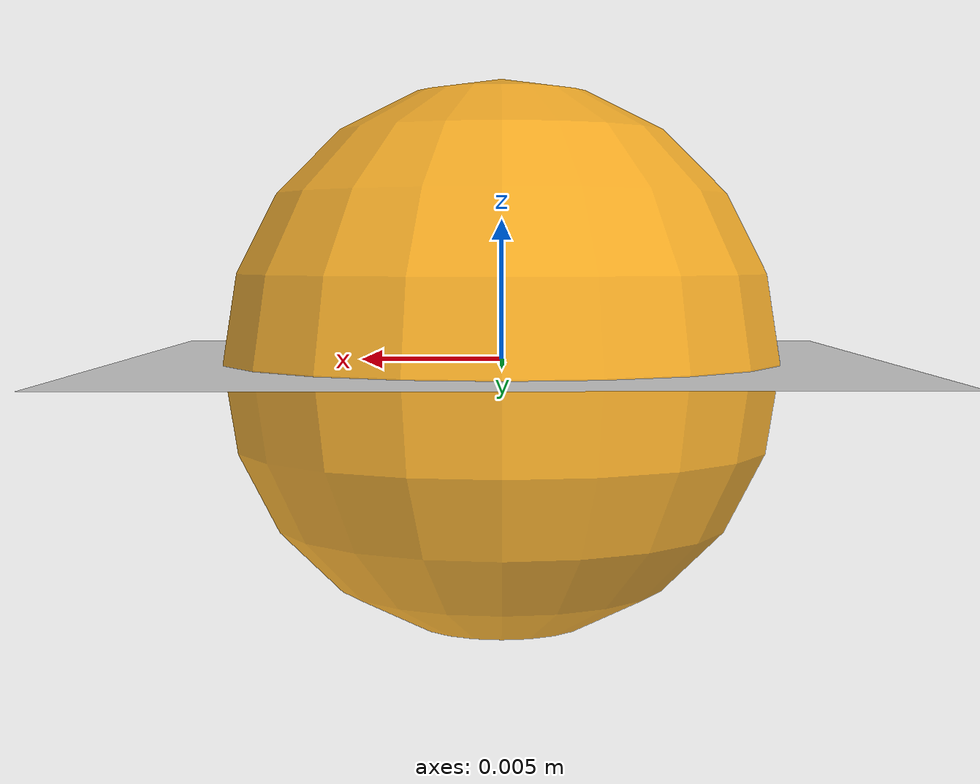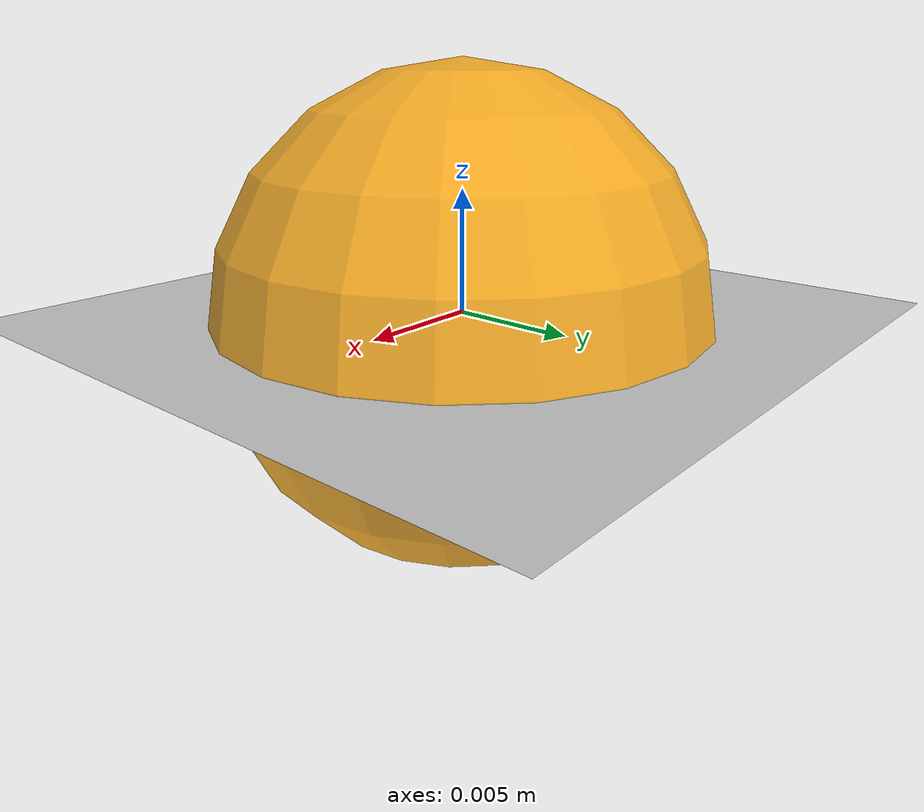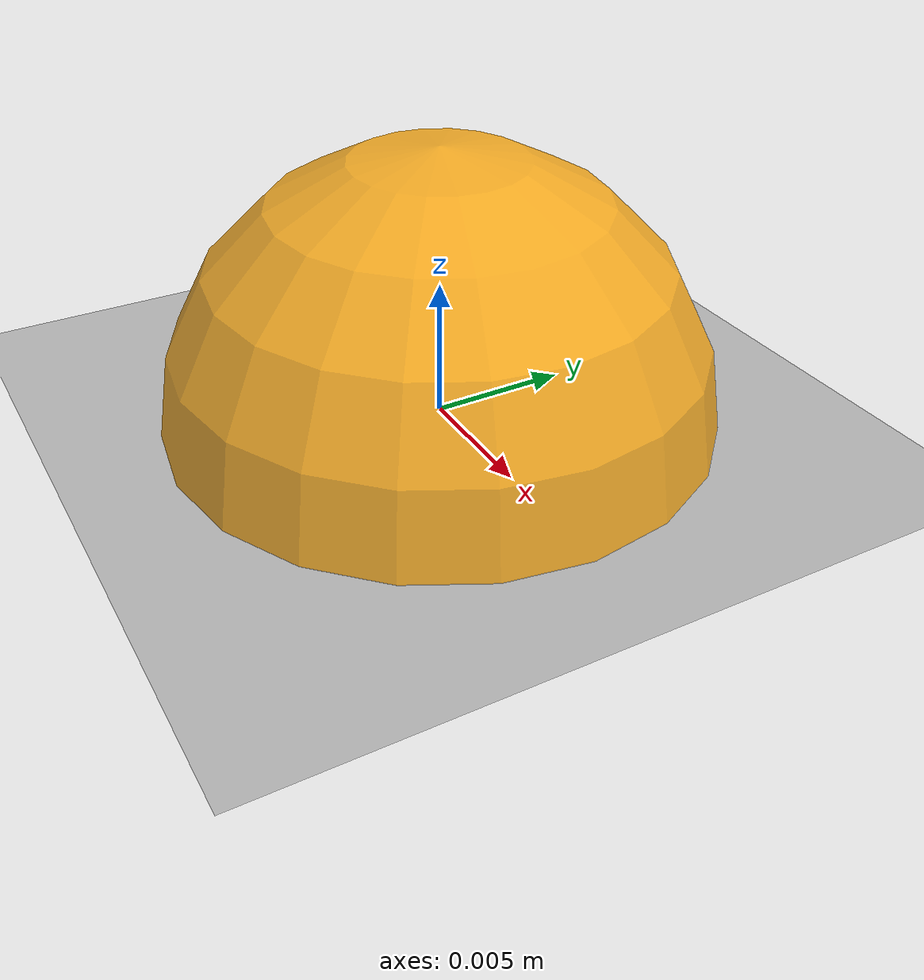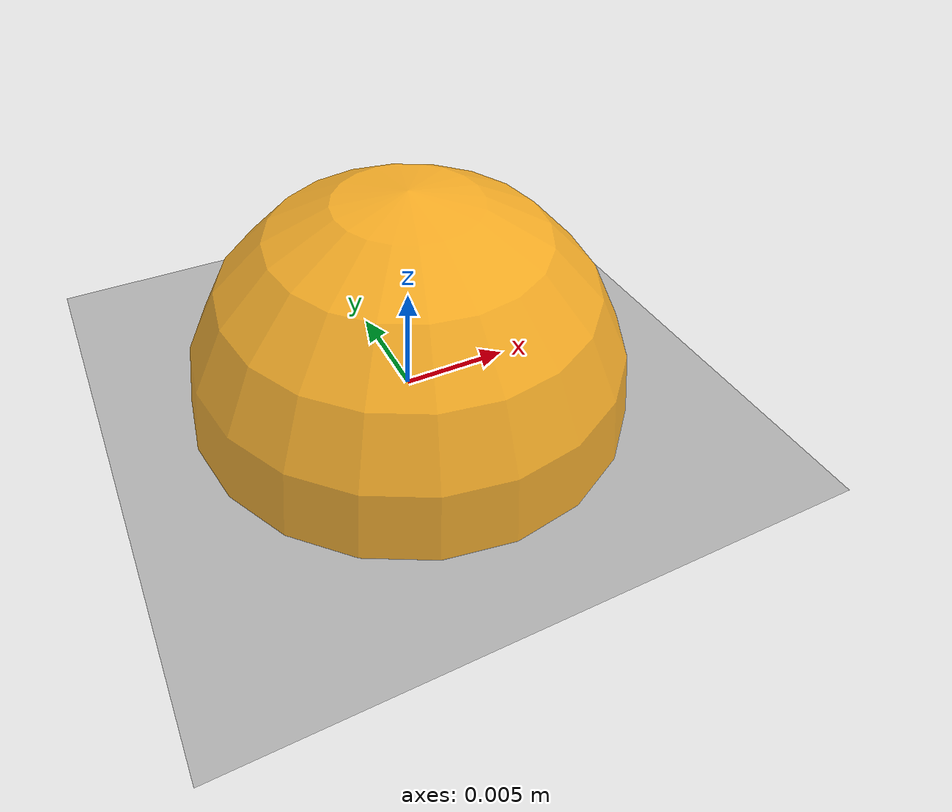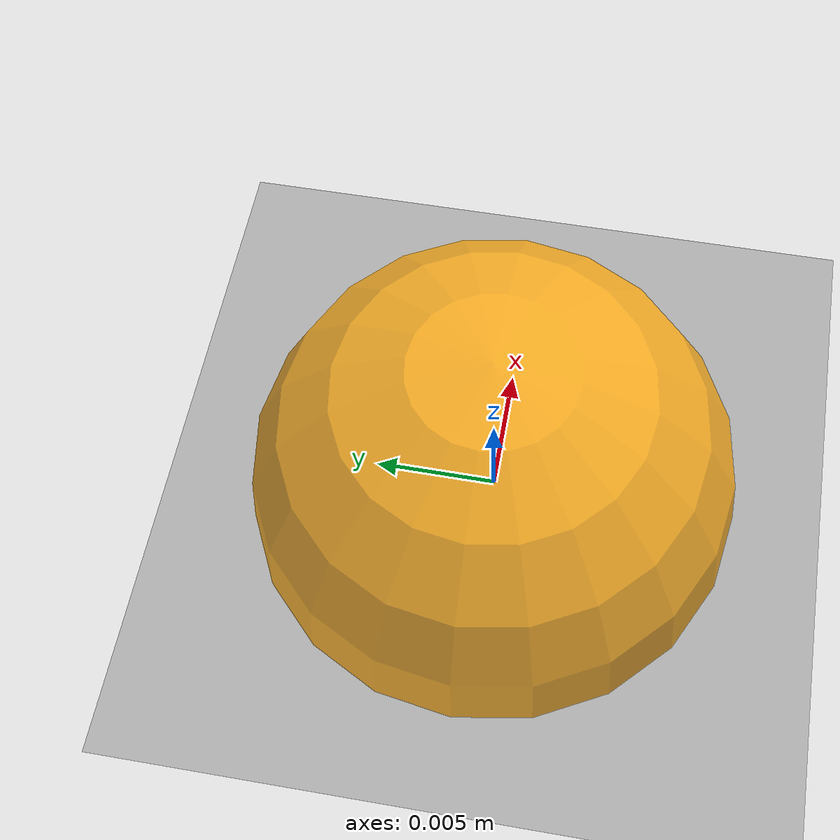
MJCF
<!-- ======================================================
	The Barrett WAM 4 DoF setup as in the IAS Lab @ TU Darmstadt

	Last edits 	: 18Dec'19
====================================================== -->

<mujoco model="wam_4dof">
    <option integrator="Euler" timestep="0.0005" gravity="0 0 -9.81"/>
    <compiler coordinate="local" angle="radian" meshdir="meshes/"/>
    <default>
        <joint type="hinge" limited="true" pos="0 0 0" axis="0 0 1" frictionloss="0.1"/>
        <site size=".02" rgba="1 0 0 0"/>
        <default class="viz">
            <geom type="mesh" contype="0" conaffinity="0" group="2" rgba="0.7 0.7 0.7 1" density="0"/>
        </default>
        <default class="col">
            <geom type="mesh" contype="0" conaffinity="1" group="3" rgba="0.5 0.6 0.7 1" density="0"/>
        </default>
    </default>

    <asset>
        <texture type="2d" name="groundplane" builtin="checker" mark="edge" rgb1="0.25 0.26 0.25" rgb2="0.22 0.22 0.22"
                 markrgb="0.3 0.3 0.3" width="100" height="100"/>
        <material name="MatGnd" texture="groundplane" texrepeat="5 5" specular="1" shininess="0.3" reflectance="1e-05"/>
    </asset>

    <worldbody>
        <geom name="ground" size="1.5 2 1" type="plane" material="MatGnd"/>
        <light pos="0.1 0.2 1.3" dir="-0.0758098 -0.32162 -0.985527" directional="true" cutoff="60" exponent="1"
               diffuse="1 1 1" specular="0.1 0.1 0.1"/>

        <body name="pred_0" pos="0 0 0">
            <site name="p0"/>
            <freejoint name="pred_0"/>
            <geom contype="0" conaffinity="0" type="sphere"
                  size="0.01" mass="0.05" rgba="1. 0.647 0. 0.8"/>
        </body>

        <body name="pred_1" pos="0 0 0">
            <site name="p1"/>
            <freejoint name="pred_1"/>
            <geom contype="0" conaffinity="0" type="sphere"
                  size="0.01" mass="0.05" rgba="1. 0.647 0. 0.8"/>
        </body>

        <body name="pred_2" pos="0 0 0">
            <site name="p2"/>
            <freejoint name="pred_2"/>
            <geom contype="0" conaffinity="0" type="sphere"
                  size="0.01" mass="0.05" rgba="1. 0.647 0. 0.8"/>
        </body>

        <body name="pred_3" pos="0 0 0">
            <site name="p3"/>
            <freejoint name="pred_3"/>
            <geom contype="0" conaffinity="0" type="sphere"
                  size="0.01" mass="0.05" rgba="1. 0.647 0. 0.8"/>
        </body>

        <body name="pred_4" pos="0 0 0">
            <site name="p4"/>
            <freejoint name="pred_4"/>
            <geom contype="0" conaffinity="0" type="sphere"
                  size="0.01" mass="0.05" rgba="1. 0.647 0. 0.8"/>
        </body>

        <body name="true_0" pos="0 0 0">
            <site name="t0"/>
            <freejoint name="true_0"/>
            <geom contype="0" conaffinity="0" type="sphere"
                  size="0.01" mass="0.05" rgba="0. 0.647 0.1 0.8"/>
        </body>

        <body name="true_1" pos="0 0 0">
            <site name="t1"/>
            <freejoint name="true_1"/>
            <geom contype="0" conaffinity="0" type="sphere"
                  size="0.01" mass="0.05" rgba="0. 0.647 0.1 0.8"/>
        </body>

        <body name="true_2" pos="0 0 0">
            <site name="t2"/>
            <freejoint name="true_2"/>
            <geom contype="0" conaffinity="0" type="sphere"
                  size="0.01" mass="0.05" rgba="0. 0.647 0.1 0.8"/>
        </body>

        <body name="true_3" pos="0 0 0">
            <site name="t3"/>
            <freejoint name="true_3"/>
            <geom contype="0" conaffinity="0" type="sphere"
                  size="0.01" mass="0.05" rgba="0. 0.647 0.1 0.8"/>
        </body>

        <body name="true_4" pos="0 0 0">
            <site name="t4"/>
            <freejoint name="true_4"/>
            <geom contype="0" conaffinity="0" type="sphere"
                  size="0.01" mass="0.05" rgba="0. 0.647 0.1 0.8"/>
        </body>

        <camera name="experiment" mode="fixed" euler="1. 0. 3.14" pos="0. -1.6 1.9"/>
    </worldbody>
    <tendon>
        <spatial width="0.0052" rgba=".95 .3 .3 1">
            <site site="p0"/>
            <site site="p1"/>
            <site site="p2"/>
            <site site="p3"/>
            <site site="p4"/>
        </spatial>
    </tendon>
    <tendon>
        <spatial width="0.0052" rgba=".95 .3 .3 1">
            <site site="t0"/>
            <site site="t1"/>
            <site site="t2"/>
            <site site="t3"/>
            <site site="t4"/>
        </spatial>
    </tendon>

</mujoco>
